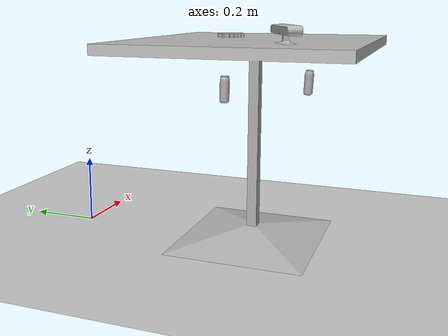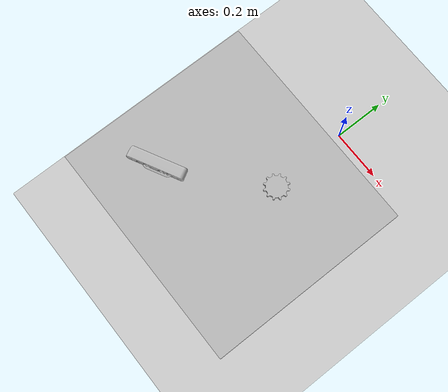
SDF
<sdf version="1.4">
 <world name="default">
  <light name="sun" type="directional">
   <pose>0 0 10 0 -0 0</pose>
   <diffuse>0.8 0.8 0.8 1</diffuse>
   <specular>0.2 0.2 0.2 1</specular>
   <attenuation>
    <range>1000</range>
    <constant>0.9</constant>
    <linear>0.01</linear>
    <quadratic>0.001</quadratic>
   </attenuation>
   <direction>-0.5 0.1 -0.9</direction>
  </light>
  <model name="ground_plane">
   <static>1</static>
   <link name="link">
    <collision name="collision">
     <geometry><plane><normal>0 0 1</normal><size>100 100</size></plane></geometry>
     <surface><friction><ode><mu>100</mu><mu2>50</mu2></ode></friction></surface>
    </collision>
    <visual name="visual">
     <cast_shadows>0</cast_shadows>
     <geometry><plane><normal>0 0 1</normal><size>100 100</size></plane></geometry>
     <material>
      <script><uri>file://media/materials/scripts/gazebo.material</uri><name>Gazebo/Grey</name></script>
     </material>
    </visual>
    <velocity_decay><linear>0</linear><angular>0</angular></velocity_decay>
   </link>
  </model>
  <physics type="ode">
   <max_step_size>0.001</max_step_size>
   <real_time_factor>1</real_time_factor>
   <real_time_update_rate>1000</real_time_update_rate>
   <gravity>0 0 -9.8</gravity>
  </physics>
  <scene><ambient>0.4 0.4 0.4 1</ambient><background>0.7 0.7 0.7 1</background><shadows>1</shadows></scene>
  <spherical_coordinates>
   <surface_model>EARTH_WGS84</surface_model>
   <latitude_deg>0</latitude_deg>
   <longitude_deg>0</longitude_deg>
   <elevation>0</elevation>
   <heading_deg>0</heading_deg>
  </spherical_coordinates>
  <model name="cafe_table_14">
   <static>1</static>
   <link name="link">
    <collision name="surface">
     <pose>0 0 0.567 0 -0 0</pose>
     <geometry><box><size>0.73 0.64 0.025</size></box></geometry>
    </collision>
    <collision name="column">
     <pose>0 0 0.37 0 -0 0</pose>
     <geometry><box><size>0 0 0</size></box></geometry>
    </collision>
    <collision name="base">
     <pose>0 0 0.02 0 -0 0</pose>
     <geometry><box><size>0 0 0</size></box></geometry>
    </collision>
    <visual name="visual">
     <geometry>
      <mesh><uri>model://cafe_table/meshes/cafe_table.dae</uri><scale>0.8 0.7 0.75</scale></mesh>
     </geometry>
    </visual>
    <velocity_decay><linear>0</linear><angular>0</angular></velocity_decay>
   </link>
   <pose>0.02863 -0.530444 0 0 -0 0</pose>
   <static>0</static>
  </model>
  <model name="gear_part">
   <link name="link">
    <inertial>
     <pose>0 0 0.005875 0 -0 0</pose>
     <mass>0.5</mass>
     <inertia>
      <ixx>0.000198203</ixx>
      <ixy>0</ixy>
      <ixz>0</ixz>
      <iyy>0.000198203</iyy>
      <iyz>0</iyz>
      <izz>0.000384405</izz>
     </inertia>
    </inertial>
    <collision name="collision">
     <pose>0 0 0.005875 0 -0 0</pose>
     <geometry><cylinder><length>0.012</length><radius>0.0392125</radius></cylinder></geometry>
     <surface><contact><ode><max_vel>0.1</max_vel><min_depth>0.001</min_depth></ode></contact></surface>
    </collision>
    <visual name="visual">
     <geometry><mesh><uri>model://gear_part/meshes/gear.dae</uri><scale>0.25 0.25 0.25</scale></mesh></geometry>
     <material>
      <script>
       <uri>model://arm_part/materials/scripts</uri>
       <uri>model://arm_part/materials/textures</uri>
       <name>ArmPart/Diffuse</name>
      </script>
     </material>
    </visual>
    <velocity_decay><linear>0</linear><angular>0</angular></velocity_decay>
   </link>
   <pose>0.115085 -0.428052 0.579086 -1e-06 -0 0</pose>
   <static>0</static>
  </model>
  <model name="asus_xtion_pro_camera">
   <pose>-0.145177 -0.655104 0.602662 3.1e-05 -1.4e-05 -1.08534</pose>
   <link name="link">
    <inertial>
     <mass>0.316</mass>
     <inertia>
      <ixx>0.0007765</ixx>
      <ixy>0</ixy>
      <ixz>0</ixz>
      <iyy>7.25e-05</iyy>
      <iyz>0</iyz>
      <izz>0.0007657</izz>
     </inertia>
    </inertial>
    <collision name="collision">
     <geometry><box><size>0.04 0.18 0.047</size></box></geometry>
     <surface>
      <contact><ode><max_vel>0.1</max_vel><min_depth>0.001</min_depth></ode></contact>
      <friction><ode><mu>0.4</mu><mu2>0.4</mu2></ode></friction>
     </surface>
    </collision>
    <visual name="visual">
     <geometry><mesh><uri>model://asus_xtion_pro_camera/meshes/asus_xtion_pro_camera.dae</uri></mesh></geometry>
    </visual>
    <sensor name="camera" type="depth">
     <pose>0.0085 0.0105 0.0197 0 -0 0</pose>
     <update_rate>30</update_rate>
     <camera name="__default__">
      <horizontal_fov>1.01229</horizontal_fov>
      <image><width>640</width><height>480</height><format>R8G8B8</format></image>
      <clip><near>0.3</near><far>3.5</far></clip>
     </camera>
    </sensor>
    <velocity_decay><linear>0</linear><angular>0</angular></velocity_decay>
   </link>
   <static>0</static>
  </model>
  <model name="coke_can_6">
   <link name="link">
    <inertial>
     <pose>-0.01 -0.012 0.02 0 -0 0</pose>
     <mass>0.09</mass>
     <inertia><ixx>0</ixx><ixy>0</ixy><ixz>0</ixz><iyy>0</iyy><iyz>0</iyz><izz>0.1</izz></inertia>
    </inertial>
    <collision name="collision">
     <pose>0 0 -0.275 0 -0 0</pose>
     <geometry><mesh><uri>model://coke_can/meshes/coke_can.dae</uri><scale>0.4 0.4 0.6</scale></mesh></geometry>
     <surface>
      <friction><ode><mu>1</mu><mu2>1</mu2></ode></friction>
      <contact><ode><kp>1e+07</kp><kd>1</kd><min_depth>0.001</min_depth><max_vel>0.1</max_vel></ode></contact>
     </surface>
    </collision>
    <visual name="visual">
     <pose>0 0 -0.275 0 -0 0</pose>
     <geometry><mesh><uri>model://coke_can/meshes/coke_can.dae</uri><scale>0.4 0.4 0.6</scale></mesh></geometry>
    </visual>
    <velocity_decay><linear>0</linear><angular>0</angular></velocity_decay>
   </link>
   <pose>0.166996 -0.659089 0.57658 0.054193 -0.03532 -0.000541</pose>
   <static>0</static>
  </model>
  <model name="coke_can_7">
   <link name="link">
    <inertial>
     <pose>-0.01 -0.012 0.02 0 -0 0</pose>
     <mass>0.09</mass>
     <inertia><ixx>0</ixx><ixy>0</ixy><ixz>0</ixz><iyy>0</iyy><iyz>0</iyz><izz>0.1</izz></inertia>
    </inertial>
    <collision name="collision">
     <pose>0 0 -0.275 0 -0 0</pose>
     <geometry><mesh><uri>model://coke_can/meshes/coke_can.dae</uri><scale>0.4 0.4 0.6</scale></mesh></geometry>
     <surface>
      <friction><ode><mu>1</mu><mu2>1</mu2></ode></friction>
      <contact><ode><kp>1e+07</kp><kd>1</kd><min_depth>0.001</min_depth><max_vel>0.1</max_vel></ode></contact>
     </surface>
    </collision>
    <visual name="visual">
     <pose>0 0 -0.275 0 -0 0</pose>
     <geometry><mesh><uri>model://coke_can/meshes/coke_can.dae</uri><scale>0.4 0.4 0.6</scale></mesh></geometry>
    </visual>
    <velocity_decay><linear>0</linear><angular>0</angular></velocity_decay>
   </link>
   <pose>-0.064029 -0.470797 0.576615 0.020076 -0.016365 -0.000171</pose>
   <static>0</static>
  </model>
 </world>
</sdf>
